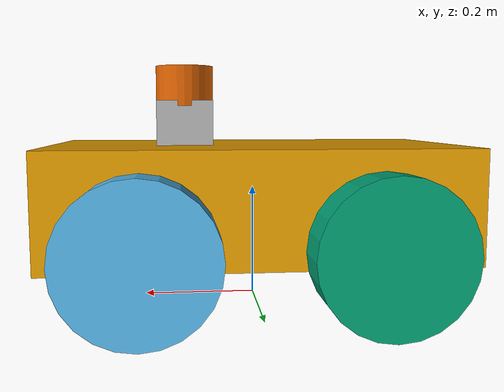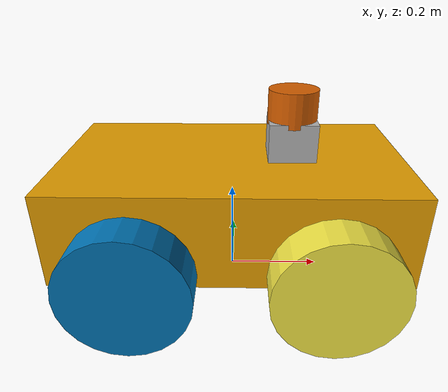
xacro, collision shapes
<?xml version="1.0"?>
<!-- Revolute-Revolute Manipulator -->
<robot name="autolabor_pro1" xmlns:xacro="http://www.ros.org/wiki/xacro">

  <xacro:property name="PI" value="3.1415926535897931"/>
  <xacro:property name="shaft_spacing_f" value="0.19649" />
  <xacro:property name="shaft_spacing_b" value="0.18988" />
  <xacro:property name="wheel_spacing_2" value="0.2643" />
  <xacro:property name="height" value="0.11913" />

  <xacro:include filename="$(find multi_robot_scenario)/xacro/autolabor_pro1/autolabor_pro1.gazebo" />

  <!-- Base Link -->
  <link name="base_link">
    <collision>
      <origin xyz="0 0 0.18288" rpy="0 0 0"/>
      <geometry>
        <box size="0.7248 0.4302 0.195"/>
      </geometry>
    </collision>

    <visual>
      <origin xyz="0 0 0" rpy="0 0 0"/>
      <geometry>
        <mesh filename="package://multi_robot_scenario/meshes/autolabor_pro1/body_color.dae"/>
      </geometry>
    </visual>

    <inertial>
      <origin xyz="0 0 0" rpy="0 0 0"/>
      <mass value="39"/>
      <inertia ixx="0.7245" ixy="0.0" ixz="0.0" iyy="1.80" iyz="0.0" izz="2.2857"/>
    </inertial>
  </link>

  <link name="left_front_wheel">
    <collision>
      <origin xyz="0 0 0" rpy="1.5708 0 0"/>
      <geometry>
        <cylinder length="0.0822" radius="0.127"/>
      </geometry>
    </collision>

    <visual>
      <origin xyz="0 0 0" rpy="0 0 0"/>
      <geometry>
        <mesh filename="package://multi_robot_scenario/meshes/autolabor_pro1/wheel_color.dae"/>
      </geometry>
    </visual>

    <inertial>
      <origin xyz="0 0 0" rpy="0 0 0"/>
      <mass value="1.5"/>
      <inertia ixx="0.013" ixy="0.0" ixz="0.0" iyy="0.0074" iyz="0.0" izz="0.0074"/>
    </inertial>
  </link>

  <link name="left_back_wheel">
    <collision>
      <origin xyz="0 0 0" rpy="1.5708 0 0"/>
      <geometry>
        <cylinder length="0.0822" radius="0.127"/>
      </geometry>
    </collision>

    <visual>
      <origin xyz="0 0 0" rpy="0 0 0"/>
      <geometry>
        <mesh filename="package://multi_robot_scenario/meshes/autolabor_pro1/wheel_color.dae"/>
      </geometry>
    </visual>

    <inertial>
      <origin xyz="0 0 0" rpy="0 0 0"/>
      <mass value="1.5"/>
      <inertia ixx="0.013" ixy="0.0" ixz="0.0" iyy="0.0074" iyz="0.0" izz="0.0074"/>
    </inertial>
  </link>

  <link name="right_front_wheel">
    <collision>
      <origin xyz="0 0 0" rpy="1.5708 0 0"/>
      <geometry>
        <cylinder length="0.0822" radius="0.127"/>
      </geometry>
    </collision>

    <visual>
      <origin xyz="0 0 0" rpy="0 0 ${PI}"/>
      <geometry>
        <mesh filename="package://multi_robot_scenario/meshes/autolabor_pro1/wheel_color.dae"/>
      </geometry>
    </visual>

    <inertial>
      <origin xyz="0 0 0" rpy="0 0 ${PI}"/>
      <mass value="1.5"/>
      <inertia ixx="0.013" ixy="0.0" ixz="0.0" iyy="0.0074" iyz="0.0" izz="0.0074"/>
    </inertial>
  </link>

  <link name="right_back_wheel">
    <collision>
      <origin xyz="0 0 0" rpy="1.5708 0 0"/>
      <geometry>
        <cylinder length="0.0822" radius="0.127"/>
      </geometry>
    </collision>

    <visual>
      <origin xyz="0 0 0" rpy="0 0 ${PI}"/>
      <geometry>
        <mesh filename="package://multi_robot_scenario/meshes/autolabor_pro1/wheel_color.dae"/>
      </geometry>
    </visual>

    <inertial>
      <origin xyz="0 0 0" rpy="0 0 ${PI}"/>
      <mass value="1.5"/>
      <inertia ixx="0.013" ixy="0.0" ixz="0.0" iyy="0.0074" iyz="0.0" izz="0.0074"/>
    </inertial>
  </link>

  <joint name="joint_left_front" type="continuous">
    <parent link="base_link"/>
    <child link="left_front_wheel"/>
    <origin xyz="${shaft_spacing_f} ${wheel_spacing_2} ${height}" rpy="0 0 0"/>
    <axis xyz="0 1 0"/>
    <dynamics damping="0.7"/>
  </joint>

  <joint name="joint_left_back" type="continuous">
    <parent link="base_link"/>
    <child link="left_back_wheel"/>
    <origin xyz="-${shaft_spacing_b} ${wheel_spacing_2} ${height}" rpy="0 0 0"/>
    <axis xyz="0 1 0"/>
    <dynamics damping="0.7"/>
  </joint>

  <joint name="joint_right_front" type="continuous">
    <parent link="base_link"/>
    <child link="right_front_wheel"/>
    <origin xyz="${shaft_spacing_f} -${wheel_spacing_2} ${height}" rpy="0 0 0"/>
    <axis xyz="0 1 0"/>
    <dynamics damping="0.7"/>
  </joint>

  <joint name="joint_right_back" type="continuous">
    <parent link="base_link"/>
    <child link="right_back_wheel"/>
    <origin xyz="-${shaft_spacing_b} -${wheel_spacing_2} ${height}" rpy="0 0 0"/>
    <axis xyz="0 1 0"/>
    <dynamics damping="0.7"/>
  </joint>

    <!-- Add IMU Sensor -->

    <!-- Add Velodyne VLP-16 LiDAR -->
    <xacro:include filename="$(find velodyne_description)/urdf/VLP-16.urdf.xacro"/>
    <xacro:VLP-16 parent="base_link" name="velodyne" topic="/velodyne_points" hz="10" samples="1800" gpu="false" min_angle="0.0" max_angle="6.28319" min_range="0.3" max_range="10.0">
      <origin xyz="0.125 0 0.35" rpy="0 0 0" />
    </xacro:VLP-16>

    <!-- Add D435i Camera -->

    <!-- Add Camera -->

    <!-- Add Laser -->
    <xacro:include filename="$(find multi_robot_scenario)/xacro/laser/hokuyo.xacro" />
    <xacro:laser name="hokuyo" parent="base_link" xyz="0.125 0 0.31" rpy="0 0 0" meshes="package://multi_robot_scenario/meshes/laser" topic="/scan">
    </xacro:laser>
</robot>

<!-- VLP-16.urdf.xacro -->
<robot xmlns:xacro="http://www.ros.org/wiki/xacro" name="VLP-16">
  <xacro:property name="M_PI" value="3.1415926535897931" />
  <xacro:macro name="VLP-16" params="*origin is_sim:=true parent:=base_link name:=velodyne tf_prefix:='' topic:=/velodyne_points organize_cloud:=false hz:=10 lasers:=16 samples:=1875 collision_range:=0.3 min_range:=0.0 max_range:=100.0 noise:=0.008 min_angle:=-${M_PI} max_angle:=${M_PI} gpu:=false">

    <joint name="${name}_base_mount_joint" type="fixed">
      <xacro:insert_block name="origin" />
      <parent link="${parent}"/>
      <child link="${name}_base_link"/>
    </joint>

    <link name="${name}_base_link">
      <inertial>
        <mass value="0.83"/>
        <origin xyz="0 0 0.03585"/>
        <inertia ixx="${(0.83 * (3.0*0.0516*0.0516 + 0.0717*0.0717)) / 12.0}" ixy="0" ixz="0"
          iyy="${(0.83 * (3.0*0.0516*0.0516 + 0.0717*0.0717)) / 12.0}" iyz="0"
          izz="${0.5 * 0.83 * (0.0516*0.0516)}"/>
      </inertial>
      <visual>
        <geometry>
          <mesh filename="package://velodyne_description/meshes/VLP16_base_1.dae" />
        </geometry>
      </visual>
      <visual>
        <geometry>
          <mesh filename="package://velodyne_description/meshes/VLP16_base_2.dae" />
        </geometry>
      </visual>
      <collision>
        <origin rpy="0 0 0" xyz="0 0 0.03585"/>
        <geometry>
          <cylinder radius="0.0516" length="0.0717"/>
        </geometry>
      </collision>
    </link>

    <joint name="${name}_base_scan_joint" type="fixed" >
      <origin xyz="0 0 0.0377" rpy="0 0 0" />
      <parent link="${name}_base_link" />
      <child link="${name}"/>
    </joint>

    <link name="${name}">
      <inertial>
        <mass value="0.01"/>
        <origin xyz="0 0 0"/>
        <inertia ixx="1e-7" ixy="0" ixz="0" iyy="1e-7" iyz="0" izz="1e-7"/>
      </inertial>
      <visual>
        <origin xyz="0 0 -0.0377" />
        <geometry>
          <mesh filename="package://velodyne_description/meshes/VLP16_scan.dae" />
        </geometry>
      </visual>
      <collision>
        <geometry>
          <sphere radius="0"/>
        </geometry>
      </collision>
    </link>

    <!-- Gazebo requires the velodyne_gazebo_plugins package -->
    <xacro:if value="${is_sim}">
        <gazebo reference="${name}">
            <xacro:if value="${gpu}">
                <sensor type="gpu_ray" name="${name}-VLP16">
                <pose>0 0 0 0 0 0</pose>
                <visualize>false</visualize>
                <update_rate>${hz}</update_rate>
                <ray>
                    <scan>
                    <horizontal>
                        <samples>${samples}</samples>
                        <resolution>1</resolution>
                        <min_angle>${min_angle}</min_angle>
                        <max_angle>${max_angle}</max_angle>
                    </horizontal>
                    <vertical>
                        <samples>${lasers}</samples>
                        <resolution>1</resolution>
                        <min_angle>-${15.0*M_PI/180.0}</min_angle>
                        <max_angle> ${15.0*M_PI/180.0}</max_angle>
                    </vertical>
                    </scan>
                    <range>
                    <min>${collision_range}</min>
                    <max>${max_range+1}</max>
                    <resolution>0.001</resolution>
                    </range>
                    <noise>
                    <type>gaussian</type>
                    <mean>0.0</mean>
                    <stddev>0.0</stddev>
                    </noise>
                </ray>
                <plugin name="gazebo_ros_laser_controller" filename="libgazebo_ros_velodyne_laser.so">
                    <ros>
                    <namespace>/${name}</namespace>
                    <remapping>~/out:=${topic}</remapping>
                    </ros>
                    <tf_prefix>${tf_prefix}</tf_prefix>
                    <frame_name>${name}</frame_name>
                    <organize_cloud>${organize_cloud}</organize_cloud>
                    <min_range>${min_range}</min_range>
                    <max_range>${max_range}</max_range>
                    <gaussian_noise>${noise}</gaussian_noise>
                </plugin>
                </sensor>
            </xacro:if>
            <xacro:unless value="${gpu}">
                <sensor type="ray" name="${name}-VLP16">
                <pose>0 0 0 0 0 0</pose>
                <visualize>false</visualize>
                <update_rate>${hz}</update_rate>
                <ray>
                    <scan>
                    <horizontal>
                        <samples>${samples}</samples>
                        <resolution>1</resolution>
                        <min_angle>${min_angle}</min_angle>
                        <max_angle>${max_angle}</max_angle>
                    </horizontal>
                    <vertical>
                        <samples>${lasers}</samples>
                        <resolution>1</resolution>
                        <min_angle>-${15.0*M_PI/180.0}</min_angle>
                        <max_angle> ${15.0*M_PI/180.0}</max_angle>
                    </vertical>
                    </scan>
                    <range>
                    <min>${collision_range}</min>
                    <max>${max_range+1}</max>
                    <resolution>0.001</resolution>
                    </range>
                    <noise>
                    <type>gaussian</type>
                    <mean>0.0</mean>
                    <stddev>0.0</stddev>
                    </noise>
                </ray>
                <plugin name="gazebo_ros_laser_controller" filename="libgazebo_ros_velodyne_laser.so">
                    <ros>
                    <namespace>/${name}</namespace>
                    <remapping>~/out:=${topic}</remapping>
                    </ros>
                    <tf_prefix>${tf_prefix}</tf_prefix>
                    <frame_name>${name}</frame_name>
                    <organize_cloud>${organize_cloud}</organize_cloud>
                    <min_range>${min_range}</min_range>
                    <max_range>${max_range}</max_range>
                    <gaussian_noise>${noise}</gaussian_noise>
                </plugin>
                </sensor>
            </xacro:unless>
        </gazebo>
    </xacro:if>

  </xacro:macro>
</robot>

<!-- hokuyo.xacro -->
<robot xmlns:xacro="http://www.ros.org/wiki/xacro">

<!-- Front Laser -->
<xacro:macro name="laser" params="name parent xyz rpy meshes topic:='${name}/scan'" >

  <joint name="${parent}_${name}_joint" type="fixed">
      <axis xyz="0 0 1" />
      <origin xyz="${xyz}" rpy="${rpy}"/>
      <parent link="${parent}"/>
      <child link="${name}"/>
    </joint>

    <link name="${name}">
      <collision>
        <origin xyz="0 0 0" rpy="0 0 0"/>
        <geometry>
          <box size="0.1 0.1 0.1"/>
        </geometry>
      </collision>
      <visual>
        <origin xyz="0 0 0" rpy="0 0 0"/>
        <geometry>
          <mesh filename="${meshes}/hokuyo.dae"/>
        </geometry>
      </visual>
      <inertial>
        <mass value="1e-5" />
        <origin xyz="0 0 0" rpy="0 0 0"/>
        <inertia ixx="1e-6" ixy="0" ixz="0" iyy="1e-6" iyz="0" izz="1e-6" />
      </inertial>
    </link>

    <gazebo reference="${name}">
        <sensor name="laser" type="ray">
        <pose>0 0 0 0 0 0</pose>
          <ray>
            <scan>
              <horizontal>
                <!-- The URG-04LX-UG01  has  683 steps with 0.35139 Degree resolution -->
                <resolution>1</resolution>
                <max_angle>6.28</max_angle> <!--2.0944 120 Degree -->
                <min_angle>0</min_angle> <!-- -120 Degree -->
                <samples>1600</samples>
              </horizontal>
            </scan>
            <range>
              <min>0.08</min>
              <max>10</max>
              <resolution>0.01</resolution>
            </range>
          </ray>

          <plugin name="laser" filename="libgazebo_ros_laser.so" >
            <robotNamespace></robotNamespace>
            <topicName>${topic}</topicName>
            <frameName>${name}</frameName>
          </plugin>
          <always_on>1</always_on>
          <update_rate>100</update_rate>
          <visualize>false</visualize>
        </sensor>
    </gazebo>
</xacro:macro>
</robot>
